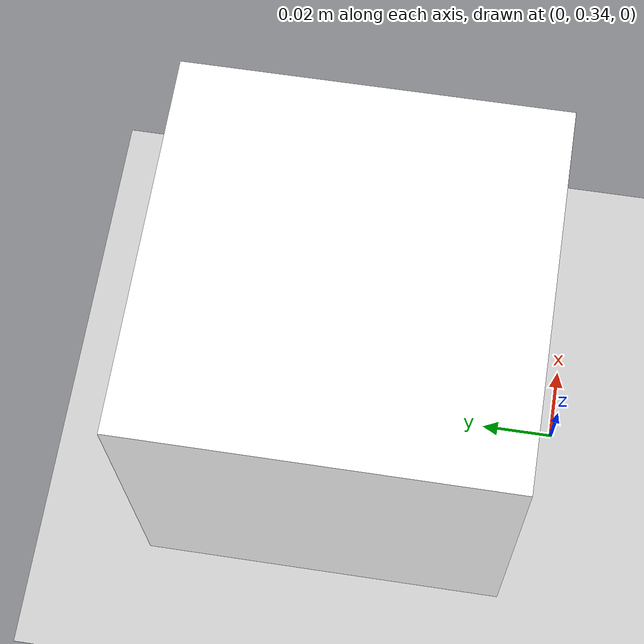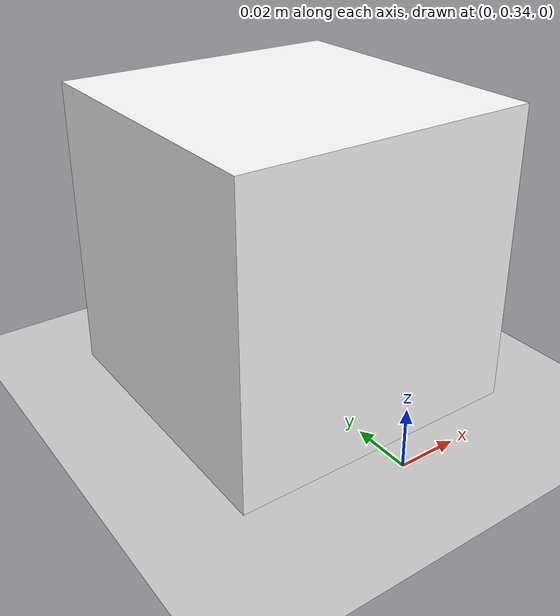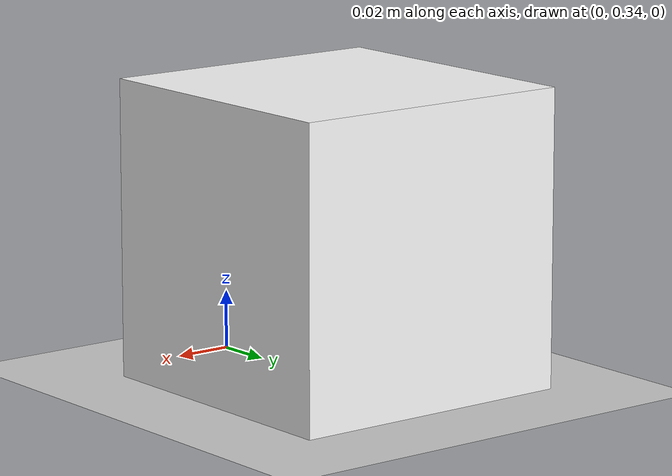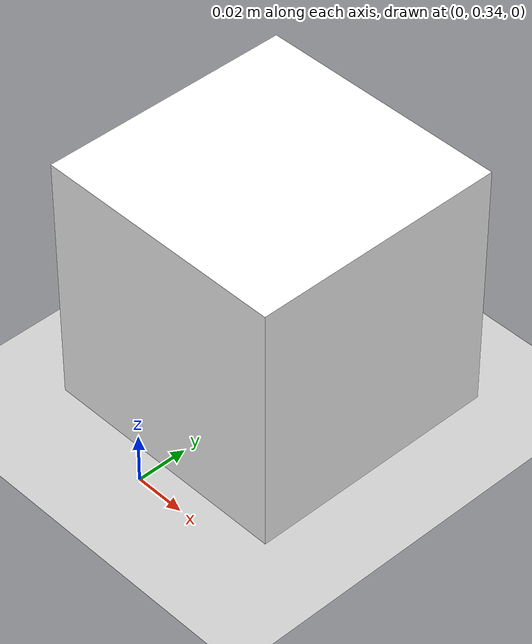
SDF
<?xml version="1.0" ?>
<sdf version="1.5">
  <world name="default">
    <!-- A global light source -->
    <include>
      <uri>model://sun</uri>
    </include>
    <!-- A ground plane -->
    <include>
      <uri>model://ground_plane</uri>
    </include>

    <include>
      <uri>model://wood_cube_10cm</uri>
      <pose>0 0.4 0.0 0 0 0</pose>
    </include>

    <physics type = "ode">
        <max_step_size>0.001</max_step_size>
        <real_time_factor>1</real_time_factor>
        <real_time_update_rate>1000</real_time_update_rate>
    </physics>
  </world>
</sdf>

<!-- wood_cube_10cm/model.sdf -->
<sdf version="1.5">
  <model name="wood_cube_10cm">
    <link name="link">
      <pose>0 0 0.05 0 0 0</pose>
      <inertial>
        <mass>0.5167</mass>
        <inertia>
          <ixx>0.0008611666666666669</ixx>
          <ixy>0</ixy>
          <ixz>0</ixz>
          <iyy>0.0008611666666666669</iyy>
          <iyz>0</iyz>
          <izz>0.0008611666666666669</izz>
        </inertia>
      </inertial>

      <collision name="collision">
        <geometry>
          <box>
            <size>0.1 0.1 0.1</size>
          </box>
        </geometry>
        <surface>
          <contact>
            <!-- Red Pine coefficients for longitudinal axis of the wood
                 according to:
                 http://www.fpl.fs.fed.us/documnts/fplgtr/fplgtr113/ch04.pdf -->
            <poissons_ratio>0.347</poissons_ratio>
            <elastic_modulus>8.8e+09</elastic_modulus>
            <ode>
              <kp>100000</kp>
              <kd>100</kd>
              <max_vel>100.0</max_vel>
              <min_depth>0.001</min_depth>
            </ode>
          </contact>
          <friction>
            <torsional>
              <coefficient>1.0</coefficient>
              <use_patch_radius>0</use_patch_radius>
              <surface_radius>0.01</surface_radius>
            </torsional>
          </friction>
        </surface>
      </collision>

      <visual name="visual">
        <geometry>
          <box>
            <size>0.1 0.1 0.1</size>
          </box>
        </geometry>
        <material><diffuse>1 1 1 1</diffuse><specular>0.1 0.1 0.1 1</specular></material>
      </visual>

    </link>
  </model>
</sdf>
